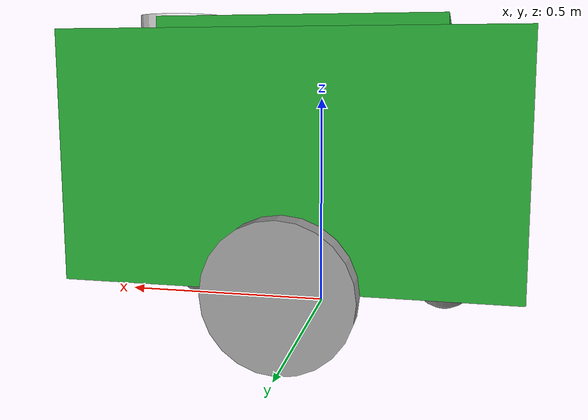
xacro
<?xml version="1.0"?>
<robot xmlns:xacro="http://ros.org/wiki/xacro" >

<!-- body value -->
<xacro:property name="base_length" value="0.9" />
<xacro:property name="base_width" value="0.85" />
<xacro:property name="base_hight" value="0.5" />

<!-- Wheel values -->
<xacro:property name="wheel_r" value="0.15" />
<xacro:property name="wheel_length" value="0.05" />

<!-- Lidar values  -->
<xacro:property name="lidar_r" value="0.1" />
<xacro:property name="lidar_l" value="0.05" />

<link name="base_footprint">
</link>

<link name="base_link">
  <visual>
    <geometry>
      <box size="${base_length} ${base_width} ${base_hight}"/>
    </geometry>
      <origin xyz="0.0 0.0 ${base_hight/2.0}" rpy="0.0 0.0 0.0"/>
      <material name="green"/>
  </visual>
  <collision>
    <geometry>
       <box size="${base_length} ${base_width} ${base_hight}"/>
    </geometry>
      <origin xyz="0.0 0.0 ${base_hight/2.0}" rpy="0.0 0.0 0.0"/>
  </collision>

  <xacro:box_inertia m="5.0" l="${2*base_length}" w="${2*base_width}" h="${2*base_hight}" xyz="0.0 0.0 ${base_hight/2.0}" rpy="0.0 0.0 0.0"/>
</link>

<link name="platform_link">
  <visual>
    <geometry>
      <box size="${base_length/1.5} ${base_width/1.5} ${base_hight/8}"/>
    </geometry>
      <origin xyz="0.0 0.0 0" rpy="0.0 0.0 0.0"/>
      <material name="green"/>
  </visual>
  <collision>
    <geometry>
      <box size="${base_length/1.5} ${base_width/1.5} ${base_hight/1.5}"/>
    </geometry>
      <origin xyz="0.0 0.0 0" rpy="0.0 0.0 0.0"/>
  </collision>

  <xacro:box_inertia m="5.0" l="${base_length/0.5}" w="${base_width/1.5}" h="${base_hight/1.5}" xyz="0.0 0.0 0" rpy="0.0 0.0 0.0"/>
</link>

    <link name="platform_lift_link">
     <visual>
        <origin xyz="0.0 0.0 0.0" rpy="0 0.0 0.0"/>
        <geometry>
            <cylinder radius="${wheel_r}" length="${base_hight}"/>
        </geometry>
        <material name="grey"/>
     </visual>
     <collision>
         <origin xyz="0.0 0.0 0.0" rpy="${pi / 2.0} 0.0 0.0"/>
        <geometry>
            <cylinder radius="${wheel_r}" length="${wheel_length}"/>
        </geometry>
     </collision>
     <xacro:cylinder_inertia m="1.0" r="${2*wheel_r}" h="${2*wheel_length}" xyz="0.0 0.0 0.0" rpy="${pi / 2.0} 0.0 0.0" />
    </link>

    <link name="lidar_link">
        <visual name="">
            <origin xyz="0.0 0.0 0.0" rpy="0.0 0.0 0.0"/>
            <geometry>
                <cylinder radius="${lidar_r}" length="${lidar_l}"/>
            </geometry>
            <material name="white" />
        </visual>
        <collision>
             <origin xyz="0.0 0.0 0.0" rpy="0.0 0.0 0.0"/>
            <geometry>
                <cylinder radius="${lidar_r}" length="${lidar_l}"/>
            </geometry>
        </collision>
    </link>

    <link name="left_wheel_link">
     <visual>
        <origin xyz="0.0 0.0 0.0" rpy="${pi / 2.0} 0.0 0.0"/>
        <geometry>
            <cylinder radius="${wheel_r}" length="${wheel_length}"/>
        </geometry>
        <material name="grey"/>
     </visual>
     <collision>
         <origin xyz="0.0 0.0 0.0" rpy="${pi / 2.0} 0.0 0.0"/>
        <geometry>
            <cylinder radius="${wheel_r}" length="${wheel_length}"/>
        </geometry>
     </collision>
     <xacro:cylinder_inertia m="1.0" r="${2*wheel_r}" h="${2*wheel_length}" xyz="0.0 0.0 0.0" rpy="${pi / 2.0} 0.0 0.0" />
    </link>

    <link name="right_wheel_link">
    <visual>
        <origin xyz="0.0 0.0 0.0" rpy="${pi / 2.0} 0.0 0.0"/>
        <geometry>
            <cylinder radius="${wheel_r}" length="${wheel_length}"/>
        </geometry>
        <material name="grey"/>
    </visual>
   <collision>
        <origin xyz="0.0 0.0 0.0" rpy="${pi / 2.0} 0.0 0.0"/>
        <geometry>
            <cylinder radius="${wheel_r}" length="${wheel_length}"/>
        </geometry>
   </collision>
    <xacro:cylinder_inertia m="1.0" r="${2*wheel_r}" h="${2*wheel_length}" xyz="0.0 0.0 0.0" rpy="${pi / 2.0} 0.0 0.0" />
    </link>

<link name="caster_link_f">
    <visual>
        <origin xyz="0.0 0.0 0.0" rpy="0.0 0.0 0.0"/>
        <geometry>
            <sphere radius="${wheel_r / 2.0}"/>
        </geometry>
        <material name="grey"/>
    </visual>
    <collision>
        <origin xyz="0.0 0.0 0.0" rpy="0.0 0.0 0.0"/>
        <geometry>
            <sphere radius="${wheel_r / 2.0}"/>
        </geometry>
    </collision>
    <xacro:sphere_inertia m="0.5" r="${2*wheel_r / 2.0}" xyz="0.0 0.0 0.0" rpy="0.0 0.0 0.0" />
</link>

<link name="caster_link_b">
    <visual>
        <origin xyz="0.0 0.0 0.0" rpy="0.0 0.0 0.0"/>
        <geometry>
            <sphere radius="${wheel_r / 2.0}"/>
        </geometry>
        <material name="grey"/>
    </visual>
    <collision>
        <origin xyz="0.0 0.0 0.0" rpy="0.0 0.0 0.0"/>
        <geometry>
            <sphere radius="${wheel_r / 2.0}"/>
        </geometry>
    </collision>
    <xacro:sphere_inertia m="0.5" r="${2*wheel_r / 2.0}" xyz="0.0 0.0 0.0" rpy="0.0 0.0 0.0" />
</link>

<link name="camera_link">
  <visual>
   <origin xyz="0.0 0.0 0.0" rpy="0.0 0.0 0.0"/>
    <geometry>
      <box size="0.025 0.025 0.025"/>
    </geometry>
    <material name="grey"/>
  </visual>
</link>
<!-- #####################################################   JOINTS   ###################################################### -->

<joint name="base_joint" type="fixed">
    <origin xyz="0.0 0.0 ${wheel_r}" rpy="0.0 0.0 0.0"/>
    <parent link="base_footprint"/>
    <child link="base_link"/>
</joint>

<joint name="platform_joint" type="fixed">
    <origin xyz="0.0 0.0 ${base_hight / 2}" rpy="0.0 0.0 0.0"/>
    <parent link="platform_lift_link"/>
    <child link="platform_link"/>
</joint>

<joint name="platform_lift_joint" type="prismatic">
    <origin xyz="0.0 0.0 ${base_hight / 2}" rpy="0.0 0.0 0.0"/>
    <parent link="base_link"/>
    <child link="platform_lift_link"/>
    <axis xyz="0 0 1"/> <!-- Movement along the Z-axis -->
     <limit lower="0.0" upper="${base_hight/2}" effort="50" velocity="1.0"/> <!-- Motion range and limits -->
</joint>

<joint name="base_lidar_joint" type="fixed">
    <parent link="base_link"/>
    <child link="lidar_link"/>
    <origin xyz="${(base_length / 2)- lidar_r} 0.0 ${base_hight + lidar_l / 2}" rpy="0.0 0.0 0.0"/>
</joint>

<joint name="left_wheel_joint" type="continuous">
        <parent link="base_link"/>
        <child link="left_wheel_link"/>
        <origin xyz="0 ${(base_width + wheel_length)/2.0} 0.0" rpy="0.0 0.0 0.0"/>
        <axis xyz="0 1 0.0"/>
</joint>

<joint name="right_wheel_joint" type="continuous">
        <parent link="base_link"/>
        <child link="right_wheel_link"/>
        <origin xyz=" 0 ${-(base_width + wheel_length)/2.0} 0.0" rpy="0.0 0.0 0.0"/>
        <axis xyz="0 1 0.0"/>
</joint>

<joint name="caster_joint_f" type="fixed">
        <origin xyz="${base_length/3.0} 0.0 ${-(wheel_r / 2.0)}" rpy="0.0 0.0 0.0"/>
        <parent link="base_link"/>
        <child link="caster_link_f"/>
</joint>

<joint name="caster_joint_b" type="fixed">
        <origin xyz="${-base_length/3.0} 0.0 ${-(wheel_r / 2.0)}" rpy="0.0 0.0 0.0"/>
        <parent link="base_link"/>
        <child link="caster_link_b"/>
</joint>

<joint name="camera_joint" type="fixed">
  <parent link="base_link"/>
  <child link="camera_link"/>
  <origin xyz="0.32 0 0.1" rpy="0 0 0"/>
</joint>

<gazebo reference="camera_link">
  <sensor type="camera" name="camera_sensor">
    <pose>0 0 0 0 0 0</pose>
    <camera>
      <horizontal_fov>1.57</horizontal_fov>
      <image>
        <width>640</width>
        <height>480</height>
        <format>R8G8B8</format>
      </image>
      <clip>
        <near>0.1</near>
        <far>100</far>
      </clip>
    </camera>
    <plugin name="gazebo_ros_camera" filename="libgazebo_ros_camera.so">
     <cameraName>camera_sensor</cameraName>
  <ros>
    <namespace>/my_robot</namespace>
    <argument>camera</argument>
  </ros>
</plugin>
  </sensor>
</gazebo>

<gazebo reference="lidar_link">
  <sensor type="ray" name="lidar_sensor">
    <pose>0 0 0 0 0 0</pose>
    <ray>
      <scan>
        <horizontal>
          <samples>360</samples>
          <resolution>1</resolution>
          <min_angle>-1.57</min_angle>
          <max_angle>1.57</max_angle>
        </horizontal>
      </scan>
      <range>
        <min>0.1</min>
        <max>10.0</max>
        <resolution>0.01</resolution>
      </range>
    </ray>
    <plugin name="gazebo_ros_laser" filename="libgazebo_ros_laser.so"/>
  </sensor>
</gazebo>

</robot>
